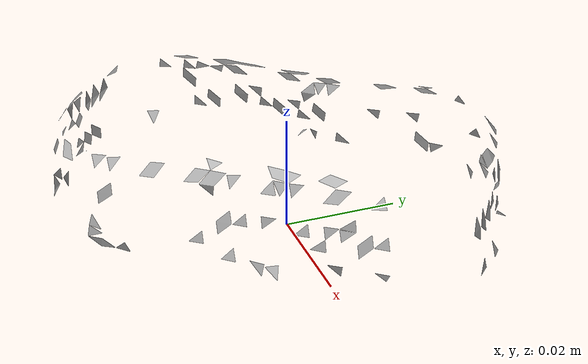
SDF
<?xml version='1.0'?>
<sdf version="1.4">
  <model name="h_lego_duplo">
    <static>false</static>
    <link name="link">
      <inertial>
        <pose>0.002695718378189566 -0.002451409639371701 0.016744082307497597 -1.6525207264515742 -1.5073385458386257 -0.5322831028741382</pose>
        <mass>4.349452729234026e-05</mass>
        <inertia>
          <ixx>2.238718219930531e-08</ixx>
          <ixy>6.003458698106074e-25</ixy>
          <ixz>1.8934847959944368e-24</ixz>
          <iyy>1.5976099169760923e-08</iyy>
          <iyz>1.7127282824231682e-24</iyz>
          <izz>4.1567612023474695e-09</izz>
        </inertia>
      </inertial>
      <collision name="collision">
        <geometry>
          <mesh>
            <!-- Use a downsampled mesh for collisions -->
            <uri>model://073-h_lego_duplo/tsdf/textured.obj</uri>
	        </mesh>
        </geometry>
        <surface>
      </surface>
      </collision>
      <visual name="visual">
        <geometry>
          <mesh>
            <uri>model://073-h_lego_duplo/tsdf/textured.obj</uri>
	        </mesh>
        </geometry>
        <material>
          <script>
            <uri>model://073-h_lego_duplo/h_lego_duplo.material</uri>
            <name>h_lego_duplo</name>
          </script>
        </material>
      </visual>
    </link>
  </model>
</sdf>
